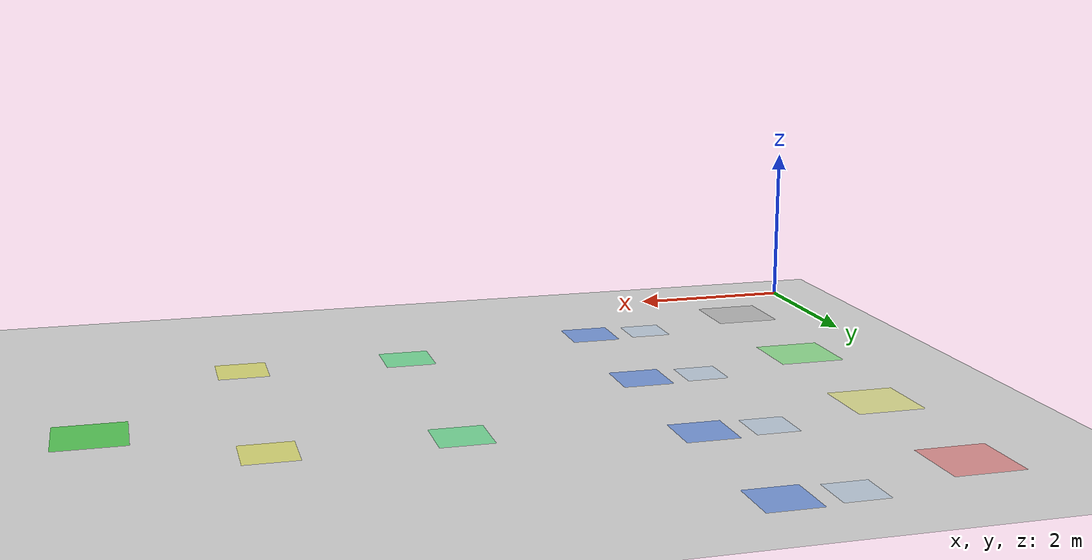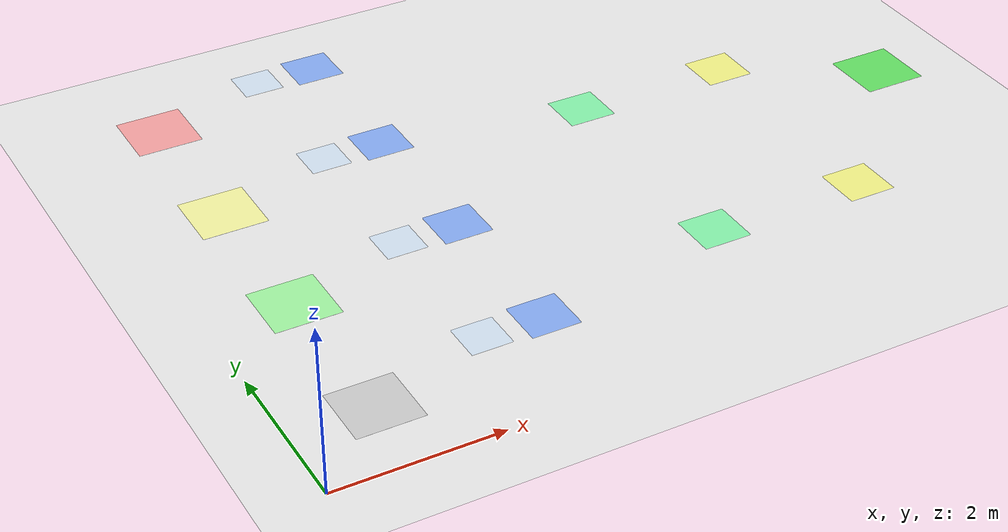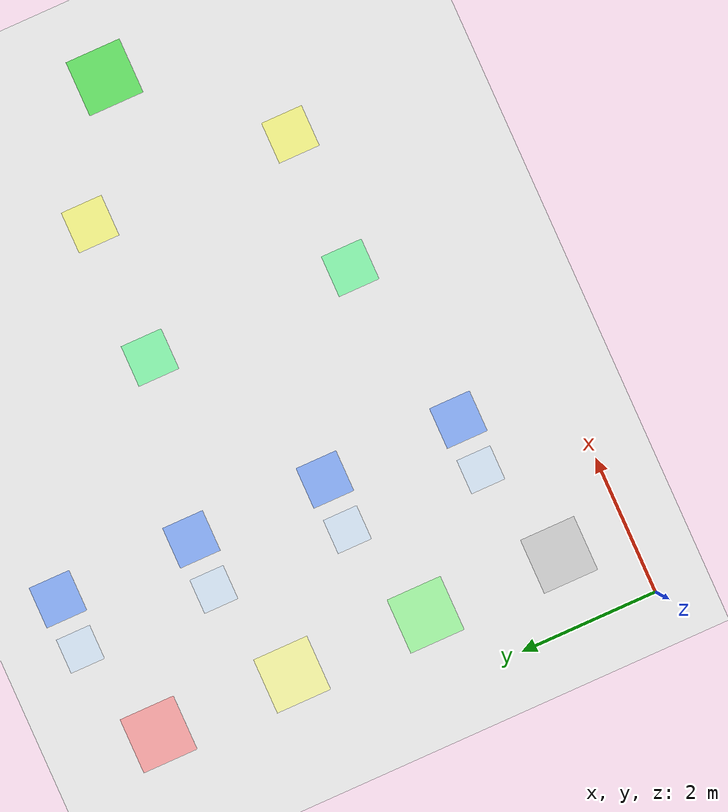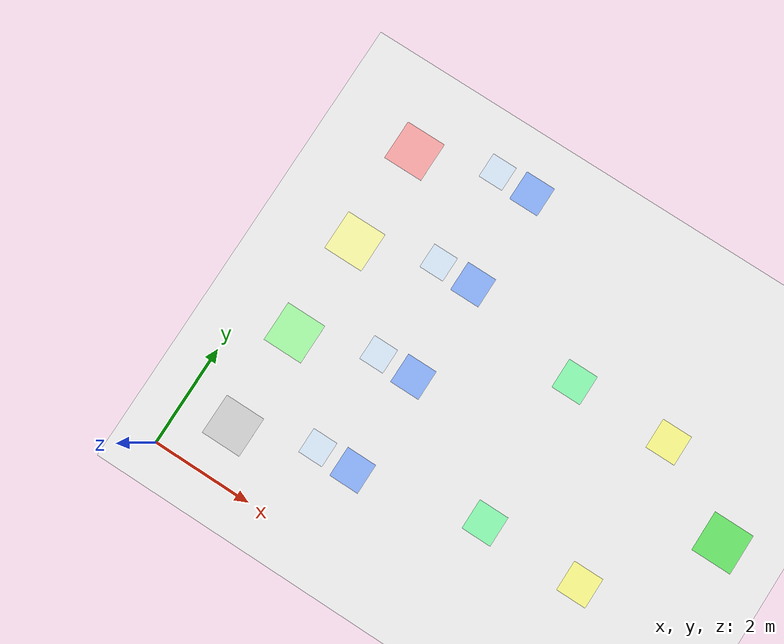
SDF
<?xml version="1.0"?>
<sdf version="1.6">
  <world name="smart_factory_colored_zones">

    <!-- 物理引擎设置 -->
    <physics type="ode">
      <max_step_size>0.001</max_step_size>
      <real_time_factor>1</real_time_factor>
      <real_time_update_rate>1000</real_time_update_rate>
    </physics>

    <!-- 光照 -->
    <include>
      <uri>model://sun</uri>
    </include>

    <!-- 地面 - 10m x 10m (对应2D的1000x1000像素) -->
    <model name="ground_plane">
      <static>true</static>
      <link name="link">
        <collision name="collision">
          <geometry>
            <plane>
              <normal>0 0 1</normal>
              <size>10 10</size>
            </plane>
          </geometry>
        </collision>
        <visual name="visual">
          <geometry>
            <plane>
              <normal>0 0 1</normal>
              <size>10 10</size>
            </plane>
          </geometry>
          <material>
            <ambient>0.9 0.9 0.9 1</ambient>
            <diffuse>0.9 0.9 0.9 1</diffuse>
          </material>
        </visual>
      </link>
    </model>

    <!-- 区域涂色标记 - 无碰撞体积，仅视觉 -->

    <!-- 1. 空桶存储区 (100,100) -> (1m, 1m) 浅灰色 -->
    <model name="empty_storage_zone">
      <static>true</static>
      <pose>1.0 1.0 0.001 0 0 0</pose>
      <link name="link">
        <visual name="visual">
          <geometry>
            <box>
              <size>0.8 0.8 0.001</size>
            </box>
          </geometry>
          <material>
            <ambient>0.7 0.7 0.7 0.8</ambient>
            <diffuse>0.8 0.8 0.8 0.8</diffuse>
          </material>
        </visual>
      </link>
    </model>

    <!-- 2. 绿桶存储区 (100,300) -> (1m, 3m) 浅绿色 -->
    <model name="green_storage_zone">
      <static>true</static>
      <pose>1.0 3.0 0.001 0 0 0</pose>
      <link name="link">
        <visual name="visual">
          <geometry>
            <box>
              <size>0.8 0.8 0.001</size>
            </box>
          </geometry>
          <material>
            <ambient>0.5 0.9 0.5 0.8</ambient>
            <diffuse>0.6 1.0 0.6 0.8</diffuse>
          </material>
        </visual>
      </link>
    </model>

    <!-- 3. 黄桶存储区 (100,500) -> (1m, 5m) 浅黄色 -->
    <model name="yellow_storage_zone">
      <static>true</static>
      <pose>1.0 5.0 0.001 0 0 0</pose>
      <link name="link">
        <visual name="visual">
          <geometry>
            <box>
              <size>0.8 0.8 0.001</size>
            </box>
          </geometry>
          <material>
            <ambient>1.0 1.0 0.5 0.8</ambient>
            <diffuse>1.0 1.0 0.6 0.8</diffuse>
          </material>
        </visual>
      </link>
    </model>

    <!-- 4. 红桶存储区 (100,700) -> (1m, 7m) 浅红色 -->
    <model name="red_storage_zone">
      <static>true</static>
      <pose>1.0 7.0 0.001 0 0 0</pose>
      <link name="link">
        <visual name="visual">
          <geometry>
            <box>
              <size>0.8 0.8 0.001</size>
            </box>
          </geometry>
          <material>
            <ambient>1.0 0.5 0.5 0.8</ambient>
            <diffuse>1.0 0.6 0.6 0.8</diffuse>
          </material>
        </visual>
      </link>
    </model>

    <!-- 5. 完成区 (950,400) -> (9.5m, 4m) 深绿色 -->
    <model name="completed_zone">
      <static>true</static>
      <pose>9.5 4.0 0.001 0 0 0</pose>
      <link name="link">
        <visual name="visual">
          <geometry>
            <box>
              <size>0.8 0.8 0.001</size>
            </box>
          </geometry>
          <material>
            <ambient>0.2 0.8 0.2 0.8</ambient>
            <diffuse>0.3 0.9 0.3 0.8</diffuse>
          </material>
        </visual>
      </link>
    </model>

    <!-- 梳棉机区域 (4台) - 蓝色标记，无碰撞 -->
    <!-- 机器位置: (325, 150+i*200) -> (3.25m, 1.5+i*2m) -->
    <model name="carding_zone_0">
      <static>true</static>
      <pose>3.25 1.5 0.001 0 0 0</pose>
      <link name="link">
        <visual name="visual">
          <geometry>
            <box>
              <size>0.6 0.6 0.001</size>
            </box>
          </geometry>
          <material>
            <ambient>0.3 0.5 0.9 0.7</ambient>
            <diffuse>0.4 0.6 1.0 0.7</diffuse>
          </material>
        </visual>
      </link>
    </model>

    <model name="carding_zone_1">
      <static>true</static>
      <pose>3.25 3.5 0.001 0 0 0</pose>
      <link name="link">
        <visual name="visual">
          <geometry>
            <box>
              <size>0.6 0.6 0.001</size>
            </box>
          </geometry>
          <material>
            <ambient>0.3 0.5 0.9 0.7</ambient>
            <diffuse>0.4 0.6 1.0 0.7</diffuse>
          </material>
        </visual>
      </link>
    </model>

    <model name="carding_zone_2">
      <static>true</static>
      <pose>3.25 5.5 0.001 0 0 0</pose>
      <link name="link">
        <visual name="visual">
          <geometry>
            <box>
              <size>0.6 0.6 0.001</size>
            </box>
          </geometry>
          <material>
            <ambient>0.3 0.5 0.9 0.7</ambient>
            <diffuse>0.4 0.6 1.0 0.7</diffuse>
          </material>
        </visual>
      </link>
    </model>

    <model name="carding_zone_3">
      <static>true</static>
      <pose>3.25 7.5 0.001 0 0 0</pose>
      <link name="link">
        <visual name="visual">
          <geometry>
            <box>
              <size>0.6 0.6 0.001</size>
            </box>
          </geometry>
          <material>
            <ambient>0.3 0.5 0.9 0.7</ambient>
            <diffuse>0.4 0.6 1.0 0.7</diffuse>
          </material>
        </visual>
      </link>
    </model>

    <!-- 拉伸机1区域 (2台) - 绿色标记 -->
    <!-- 机器位置: (575, 200+i*300) -> (5.75m, 2+i*3m) -->
    <model name="drawing1_zone_0">
      <static>true</static>
      <pose>5.75 2.0 0.001 0 0 0</pose>
      <link name="link">
        <visual name="visual">
          <geometry>
            <box>
              <size>0.6 0.6 0.001</size>
            </box>
          </geometry>
          <material>
            <ambient>0.3 0.9 0.5 0.7</ambient>
            <diffuse>0.4 1.0 0.6 0.7</diffuse>
          </material>
        </visual>
      </link>
    </model>

    <model name="drawing1_zone_1">
      <static>true</static>
      <pose>5.75 5.0 0.001 0 0 0</pose>
      <link name="link">
        <visual name="visual">
          <geometry>
            <box>
              <size>0.6 0.6 0.001</size>
            </box>
          </geometry>
          <material>
            <ambient>0.3 0.9 0.5 0.7</ambient>
            <diffuse>0.4 1.0 0.6 0.7</diffuse>
          </material>
        </visual>
      </link>
    </model>

    <!-- 拉伸机2区域 (2台) - 黄色标记 -->
    <!-- 机器位置: (775, 200+i*300) -> (7.75m, 2+i*3m) -->
    <model name="drawing2_zone_0">
      <static>true</static>
      <pose>7.75 2.0 0.001 0 0 0</pose>
      <link name="link">
        <visual name="visual">
          <geometry>
            <box>
              <size>0.6 0.6 0.001</size>
            </box>
          </geometry>
          <material>
            <ambient>1.0 0.9 0.3 0.7</ambient>
            <diffuse>1.0 1.0 0.4 0.7</diffuse>
          </material>
        </visual>
      </link>
    </model>

    <model name="drawing2_zone_1">
      <static>true</static>
      <pose>7.75 5.0 0.001 0 0 0</pose>
      <link name="link">
        <visual name="visual">
          <geometry>
            <box>
              <size>0.6 0.6 0.001</size>
            </box>
          </geometry>
          <material>
            <ambient>1.0 0.9 0.3 0.7</ambient>
            <diffuse>1.0 1.0 0.4 0.7</diffuse>
          </material>
        </visual>
      </link>
    </model>

    <!-- 梳棉机等待区标记 (淡蓝色) -->
    <model name="carding_waiting_zone_0">
      <static>true</static>
      <pose>2.5 1.5 0.001 0 0 0</pose>
      <link name="link">
        <visual name="visual">
          <geometry>
            <box>
              <size>0.5 0.5 0.001</size>
            </box>
          </geometry>
          <material>
            <ambient>0.7 0.8 1.0 0.6</ambient>
            <diffuse>0.8 0.9 1.0 0.6</diffuse>
          </material>
        </visual>
      </link>
    </model>

    <model name="carding_waiting_zone_1">
      <static>true</static>
      <pose>2.5 3.5 0.001 0 0 0</pose>
      <link name="link">
        <visual name="visual">
          <geometry>
            <box>
              <size>0.5 0.5 0.001</size>
            </box>
          </geometry>
          <material>
            <ambient>0.7 0.8 1.0 0.6</ambient>
            <diffuse>0.8 0.9 1.0 0.6</diffuse>
          </material>
        </visual>
      </link>
    </model>

    <model name="carding_waiting_zone_2">
      <static>true</static>
      <pose>2.5 5.5 0.001 0 0 0</pose>
      <link name="link">
        <visual name="visual">
          <geometry>
            <box>
              <size>0.5 0.5 0.001</size>
            </box>
          </geometry>
          <material>
            <ambient>0.7 0.8 1.0 0.6</ambient>
            <diffuse>0.8 0.9 1.0 0.6</diffuse>
          </material>
        </visual>
      </link>
    </model>

    <model name="carding_waiting_zone_3">
      <static>true</static>
      <pose>2.5 7.5 0.001 0 0 0</pose>
      <link name="link">
        <visual name="visual">
          <geometry>
            <box>
              <size>0.5 0.5 0.001</size>
            </box>
          </geometry>
          <material>
            <ambient>0.7 0.8 1.0 0.6</ambient>
            <diffuse>0.8 0.9 1.0 0.6</diffuse>
          </material>
        </visual>
      </link>
    </model>

    <!-- GUI设置 - 俯视角度，便于观察整个工厂 -->
    <gui fullscreen="0">
      <camera name="user_camera">
        <pose>5.0 -3.0 12.0 0 1.2 1.57</pose>
      </camera>
    </gui>

  </world>
</sdf>
